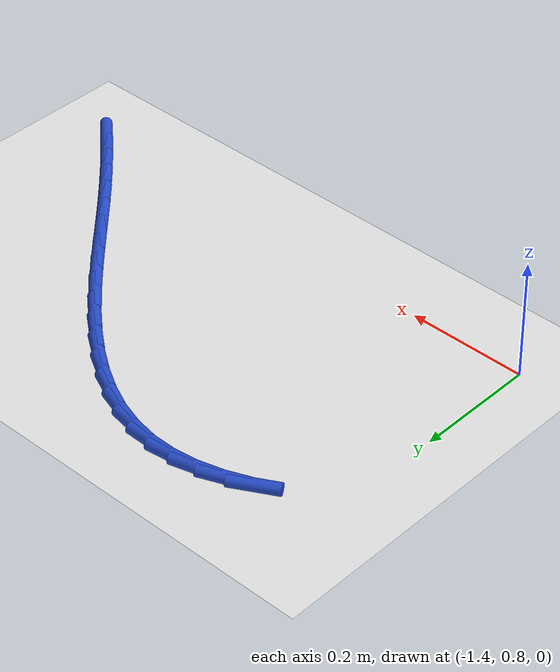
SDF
<sdf version="1.6">
 <world name="default">
  <model name="ground_plane">
   <static>1</static>
   <link name="link">
    <collision name="collision">
     <geometry><plane><normal>0 0 1</normal><size>100 100</size></plane></geometry>
     <surface><friction><ode><mu>100</mu><mu2>50</mu2></ode></friction></surface>
    </collision>
    <visual name="visual">
     <cast_shadows>0</cast_shadows>
     <geometry><plane><normal>0 0 1</normal><size>100 100</size></plane></geometry>
     <material>
      <script><uri>file://media/materials/scripts/gazebo.material</uri><name>Gazebo/WhiteGlow</name></script>
     </material>
    </visual>
   </link>
  </model>
  <model name="line">
   <link name="link_23">
    <pose>-0.5362480664177763 0.798224322627297 0.01 0 1.57 -0.7523815616115738</pose>
    <collision name="collision">
     <geometry><cylinder><radius>0.01</radius><length>0.08</length></cylinder></geometry>
    </collision>
    <visual name="visual">
     <material>
      <script><name>Gazebo/Blue</name><uri>file://media/materials/scripts/gazebo.material</uri></script>
     </material>
     <geometry><cylinder><radius>0.01</radius><length>0.08</length></cylinder></geometry>
    </visual>
   </link>
   <link name="link_24">
    <pose>-0.5678117662249231 0.8277696757188491 0.01 0 1.57 -0.7730718720368828</pose>
    <collision name="collision">
     <geometry><cylinder><radius>0.01</radius><length>0.08</length></cylinder></geometry>
    </collision>
    <visual name="visual">
     <material>
      <script><name>Gazebo/Blue</name><uri>file://media/materials/scripts/gazebo.material</uri></script>
     </material>
     <geometry><cylinder><radius>0.01</radius><length>0.08</length></cylinder></geometry>
    </visual>
   </link>
   <link name="link_25">
    <pose>-0.5989728413446782 0.8581718656615851 0.01 0 1.57 -0.7915392567322995</pose>
    <collision name="collision">
     <geometry><cylinder><radius>0.01</radius><length>0.08</length></cylinder></geometry>
    </collision>
    <visual name="visual">
     <material>
      <script><name>Gazebo/Blue</name><uri>file://media/materials/scripts/gazebo.material</uri></script>
     </material>
     <geometry><cylinder><radius>0.01</radius><length>0.08</length></cylinder></geometry>
    </visual>
   </link>
   <link name="link_26">
    <pose>-0.629974395583329 0.889556544396007 0.01 0 1.57 -0.8075355899145525</pose>
    <collision name="collision">
     <geometry><cylinder><radius>0.01</radius><length>0.08</length></cylinder></geometry>
    </collision>
    <visual name="visual">
     <material>
      <script><name>Gazebo/Blue</name><uri>file://media/materials/scripts/gazebo.material</uri></script>
     </material>
     <geometry><cylinder><radius>0.01</radius><length>0.08</length></cylinder></geometry>
    </visual>
   </link>
   <link name="link_27">
    <pose>-0.6610595327471629 0.9220493638626169 0.01 0 1.57 -0.8208083814956186</pose>
    <collision name="collision">
     <geometry><cylinder><radius>0.01</radius><length>0.08</length></cylinder></geometry>
    </collision>
    <visual name="visual">
     <material>
      <script><name>Gazebo/Blue</name><uri>file://media/materials/scripts/gazebo.material</uri></script>
     </material>
     <geometry><cylinder><radius>0.01</radius><length>0.08</length></cylinder></geometry>
    </visual>
   </link>
   <link name="link_28">
    <pose>-0.6924685098278407 0.9557653960657809 0.01 0 1.57 -0.8281107948506906</pose>
    <collision name="collision">
     <geometry><cylinder><radius>0.01</radius><length>0.08</length></cylinder></geometry>
    </collision>
    <visual name="visual">
     <material>
      <script><name>Gazebo/Blue</name><uri>file://media/materials/scripts/gazebo.material</uri></script>
     </material>
     <geometry><cylinder><radius>0.01</radius><length>0.08</length></cylinder></geometry>
    </visual>
   </link>
   <link name="link_29">
    <pose>-0.7243554612357197 0.9904996460123353 0.01 0 1.57 -0.8261800438347837</pose>
    <collision name="collision">
     <geometry><cylinder><radius>0.01</radius><length>0.08</length></cylinder></geometry>
    </collision>
    <visual name="visual">
     <material>
      <script><name>Gazebo/Blue</name><uri>file://media/materials/scripts/gazebo.material</uri></script>
     </material>
     <geometry><cylinder><radius>0.01</radius><length>0.08</length></cylinder></geometry>
    </visual>
   </link>
   <link name="link_30">
    <pose>-0.7567750779302259 1.0256775458714047 0.01 0 1.57 -0.8151564640790039</pose>
    <collision name="collision">
     <geometry><cylinder><radius>0.01</radius><length>0.08</length></cylinder></geometry>
    </collision>
    <visual name="visual">
     <material>
      <script><name>Gazebo/Blue</name><uri>file://media/materials/scripts/gazebo.material</uri></script>
     </material>
     <geometry><cylinder><radius>0.01</radius><length>0.08</length></cylinder></geometry>
    </visual>
   </link>
   <link name="link_31">
    <pose>-0.7897765225963003 1.0607039824662918 0.01 0 1.57 -0.7949311237352239</pose>
    <collision name="collision">
     <geometry><cylinder><radius>0.01</radius><length>0.08</length></cylinder></geometry>
    </collision>
    <visual name="visual">
     <material>
      <script><name>Gazebo/Blue</name><uri>file://media/materials/scripts/gazebo.material</uri></script>
     </material>
     <geometry><cylinder><radius>0.01</radius><length>0.08</length></cylinder></geometry>
    </visual>
   </link>
   <link name="link_32">
    <pose>-0.823408957918884 1.0949838426203007 0.01 0 1.57 -0.7649637945313681</pose>
    <collision name="collision">
     <geometry><cylinder><radius>0.01</radius><length>0.08</length></cylinder></geometry>
    </collision>
    <visual name="visual">
     <material>
      <script><name>Gazebo/Blue</name><uri>file://media/materials/scripts/gazebo.material</uri></script>
     </material>
     <geometry><cylinder><radius>0.01</radius><length>0.08</length></cylinder></geometry>
    </visual>
   </link>
   <link name="link_33">
    <pose>-0.8577215465829184 1.1279220131567336 0.01 0 1.57 -0.7242941805951031</pose>
    <collision name="collision">
     <geometry><cylinder><radius>0.01</radius><length>0.08</length></cylinder></geometry>
    </collision>
    <visual name="visual">
     <material>
      <script><name>Gazebo/Blue</name><uri>file://media/materials/scripts/gazebo.material</uri></script>
     </material>
     <geometry><cylinder><radius>0.01</radius><length>0.08</length></cylinder></geometry>
    </visual>
   </link>
   <link name="link_34">
    <pose>-0.8927634512733444 1.1589233808988944 0.01 0 1.57 -0.6715520813317644</pose>
    <collision name="collision">
     <geometry><cylinder><radius>0.01</radius><length>0.08</length></cylinder></geometry>
    </collision>
    <visual name="visual">
     <material>
      <script><name>Gazebo/Blue</name><uri>file://media/materials/scripts/gazebo.material</uri></script>
     </material>
     <geometry><cylinder><radius>0.01</radius><length>0.08</length></cylinder></geometry>
    </visual>
   </link>
   <link name="link_35">
    <pose>-0.928583834675103 1.1873928326700853 0.01 0 1.57 -0.6050042438337838</pose>
    <collision name="collision">
     <geometry><cylinder><radius>0.01</radius><length>0.08</length></cylinder></geometry>
    </collision>
    <visual name="visual">
     <material>
      <script><name>Gazebo/Blue</name><uri>file://media/materials/scripts/gazebo.material</uri></script>
     </material>
     <geometry><cylinder><radius>0.01</radius><length>0.08</length></cylinder></geometry>
    </visual>
   </link>
   <link name="link_36">
    <pose>-0.9652318594731354 1.2127352552936101 0.01 0 1.57 -0.5227051112629826</pose>
    <collision name="collision">
     <geometry><cylinder><radius>0.01</radius><length>0.08</length></cylinder></geometry>
    </collision>
    <visual name="visual">
     <material>
      <script><name>Gazebo/Blue</name><uri>file://media/materials/scripts/gazebo.material</uri></script>
     </material>
     <geometry><cylinder><radius>0.01</radius><length>0.08</length></cylinder></geometry>
    </visual>
   </link>
   <link name="link_37">
    <pose>-1.0027566883523829 1.2343555355927713 0.01 0 1.57 -0.4228575327056802</pose>
    <collision name="collision">
     <geometry><cylinder><radius>0.01</radius><length>0.08</length></cylinder></geometry>
    </collision>
    <visual name="visual">
     <material>
      <script><name>Gazebo/Blue</name><uri>file://media/materials/scripts/gazebo.material</uri></script>
     </material>
     <geometry><cylinder><radius>0.01</radius><length>0.08</length></cylinder></geometry>
    </visual>
   </link>
   <link name="link_38">
    <pose>-1.0412074839977856 1.2516585603908719 0.01 0 1.57 -0.30450282897941594</pose>
    <collision name="collision">
     <geometry><cylinder><radius>0.01</radius><length>0.08</length></cylinder></geometry>
    </collision>
    <visual name="visual">
     <material>
      <script><name>Gazebo/Blue</name><uri>file://media/materials/scripts/gazebo.material</uri></script>
     </material>
     <geometry><cylinder><radius>0.01</radius><length>0.08</length></cylinder></geometry>
    </visual>
   </link>
   <link name="link_39">
    <pose>-1.0806334090942862 1.2640492165112158 0.01 0 1.57 -0.1685496304630655</pose>
    <collision name="collision">
     <geometry><cylinder><radius>0.01</radius><length>0.08</length></cylinder></geometry>
    </collision>
    <visual name="visual">
     <material>
      <script><name>Gazebo/Blue</name><uri>file://media/materials/scripts/gazebo.material</uri></script>
     </material>
     <geometry><cylinder><radius>0.01</radius><length>0.08</length></cylinder></geometry>
    </visual>
   </link>
   <link name="link_40">
    <pose>-1.1210836263268247 1.2709323907771055 0.01 0 1.57 -0.018964667046183915</pose>
    <collision name="collision">
     <geometry><cylinder><radius>0.01</radius><length>0.08</length></cylinder></geometry>
    </collision>
    <visual name="visual">
     <material>
      <script><name>Gazebo/Blue</name><uri>file://media/materials/scripts/gazebo.material</uri></script>
     </material>
     <geometry><cylinder><radius>0.01</radius><length>0.08</length></cylinder></geometry>
    </visual>
   </link>
   <link name="link_41">
    <pose>-1.1626014998685155 1.271719857833985 0.01 0 1.57 0.12982514322320207</pose>
    <collision name="collision">
     <geometry><cylinder><radius>0.01</radius><length>0.08</length></cylinder></geometry>
    </collision>
    <visual name="visual">
     <material>
      <script><name>Gazebo/Blue</name><uri>file://media/materials/scripts/gazebo.material</uri></script>
     </material>
     <geometry><cylinder><radius>0.01</radius><length>0.08</length></cylinder></geometry>
    </visual>
   </link>
   <link name="link_42">
    <pose>-1.2049174655375265 1.2661951075045736 0.01 0 1.57 0.2649828141941581</pose>
    <collision name="collision">
     <geometry><cylinder><radius>0.01</radius><length>0.08</length></cylinder></geometry>
    </collision>
    <visual name="visual">
     <material>
      <script><name>Gazebo/Blue</name><uri>file://media/materials/scripts/gazebo.material</uri></script>
     </material>
     <geometry><cylinder><radius>0.01</radius><length>0.08</length></cylinder></geometry>
    </visual>
   </link>
   <link name="link_43">
    <pose>-1.2472960321741364 1.2546950857827777 0.01 0 1.57 0.38929277703181014</pose>
    <collision name="collision">
     <geometry><cylinder><radius>0.01</radius><length>0.08</length></cylinder></geometry>
    </collision>
    <visual name="visual">
     <material>
      <script><name>Gazebo/Blue</name><uri>file://media/materials/scripts/gazebo.material</uri></script>
     </material>
     <geometry><cylinder><radius>0.01</radius><length>0.08</length></cylinder></geometry>
    </visual>
   </link>
   <link name="link_44">
    <pose>-1.288963782295939 1.2376017898364782 0.01 0 1.57 0.5067256533940862</pose>
    <collision name="collision">
     <geometry><cylinder><radius>0.01</radius><length>0.08</length></cylinder></geometry>
    </collision>
    <visual name="visual">
     <material>
      <script><name>Gazebo/Blue</name><uri>file://media/materials/scripts/gazebo.material</uri></script>
     </material>
     <geometry><cylinder><radius>0.01</radius><length>0.08</length></cylinder></geometry>
    </visual>
   </link>
  </model>
 </world>
</sdf>
